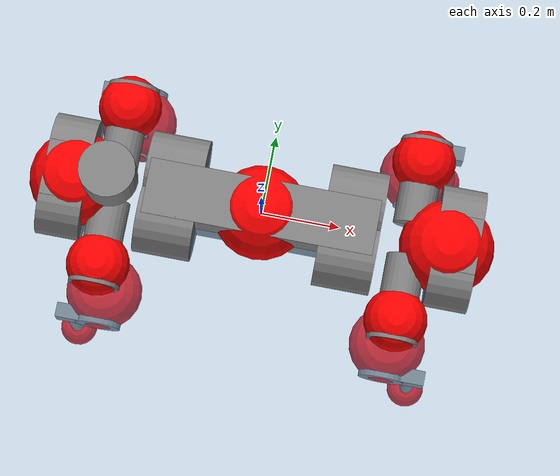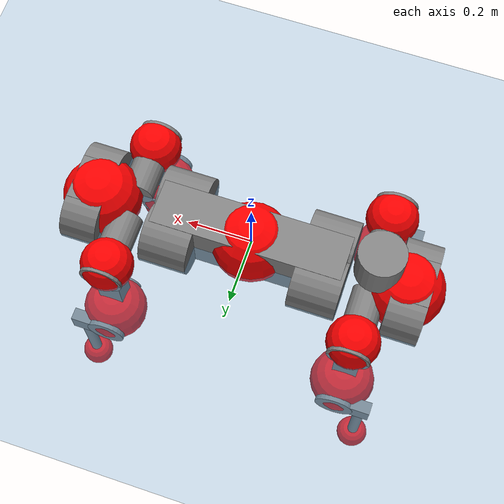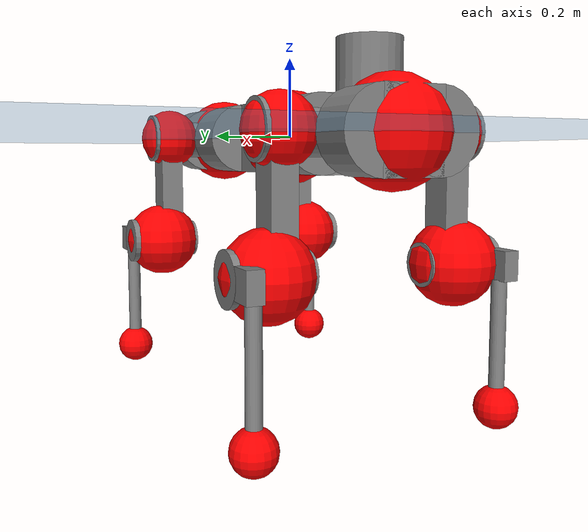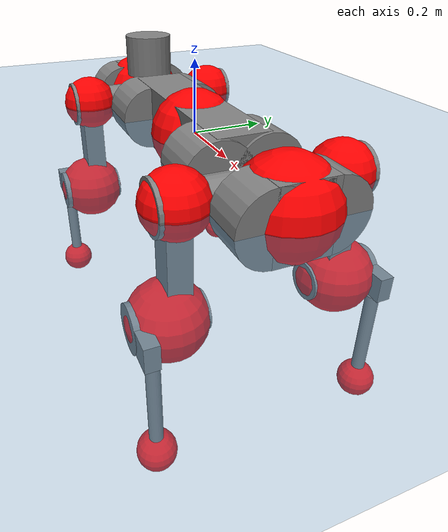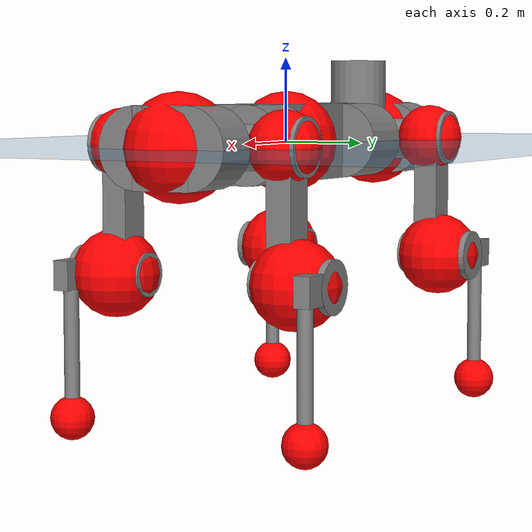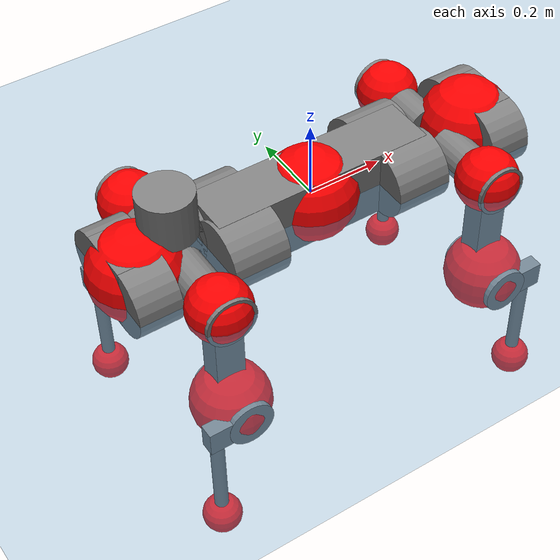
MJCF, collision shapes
<mujoco model="anymal_c">
  <compiler angle="radian" assetdir="assets" balanceinertia="true" inertiafromgeom="false"/>

  <option timestep="0.005" density="1.2" viscosity="2e-05"/>

  <size nkey="1"/>

  <visual>
    <quality shadowsize="8192"/>
    <map shadowclip="0.5"/>
  </visual>

  <default>
    <default class="/">
      <material specular="0" shininess="0.25"/>
      <geom contype="0" conaffinity="0" group="1" solref="-1000 -80"/>
      <site size="0.01 0.005 0.005" group="5"/>
      <general forcelimited="true" forcerange="-80 80" biastype="affine" gainprm="80" biasprm="0 -80 -2"/>
      <default class="anymal_c">
        <joint armature="0.01" damping="0.01" frictionloss="0.1"/>
        <default class="visual">
          <geom type="mesh" group="2"/>
          <default class="visual_zflip"/>
        </default>
        <default class="collision">
          <geom type="cylinder" group="3"/>
          <default class="foot">
            <geom size="0.03 0 0" type="sphere" condim="6" priority="1" friction="0.8 0.02 0.01" solimp="0.015 1 0.03"/>
          </default>
        </default>
      </default>
      <default class="reward_collision_sphere">
        <geom group="5" rgba="1 0 0 1"/>
      </default>
    </default>
  </default>

  <asset>
    <texture type="skybox" colorspace="auto" name="//unnamed_texture_0" builtin="gradient" rgb1="0.95 0.95 0.95" rgb2="0.95 0.95 0.95" width="100" height="600"/>
    <texture type="2d" colorspace="auto" name="texplane" builtin="checker" rgb1="0.345 0.575 0.748" rgb2="0.345 0.575 0.748" markrgb="1 1 1" width="512" height="512"/>
    <texture type="2d" colorspace="linear" name="base" file="base.png"/>
    <texture type="2d" colorspace="linear" name="top_shell" file="top_shell.png"/>
    <texture type="2d" colorspace="linear" name="bottom_shell" file="bottom_shell.png"/>
    <texture type="2d" colorspace="linear" name="remote" file="remote.png"/>
    <texture type="2d" colorspace="linear" name="hatch" file="hatch.png"/>
    <texture type="2d" colorspace="linear" name="handle" file="handle.png"/>
    <texture type="2d" colorspace="linear" name="face" file="face.png"/>
    <texture type="2d" colorspace="linear" name="battery" file="battery.png"/>
    <texture type="2d" colorspace="linear" name="lidar_cage" file="lidar_cage.png"/>
    <texture type="2d" colorspace="linear" name="depth_camera" file="depth_camera.png"/>
    <texture type="2d" colorspace="linear" name="wide_angle_camera" file="wide_angle_camera.png"/>
    <texture type="2d" colorspace="linear" name="lidar" file="lidar.png"/>
    <texture type="2d" colorspace="linear" name="drive" file="drive.png"/>
    <texture type="2d" colorspace="linear" name="hip_l" file="hip_l.png"/>
    <texture type="2d" colorspace="linear" name="shank_l" file="shank_l.png"/>
    <texture type="2d" colorspace="linear" name="foot" file="foot.png"/>
    <texture type="2d" colorspace="linear" name="thigh" file="thigh.png"/>
    <texture type="2d" colorspace="linear" name="shank_r" file="shank_r.png"/>
    <texture type="2d" colorspace="linear" name="hip_r" file="hip_r.png"/>
    <material name="MatPlane" class="/" texture="texplane" texuniform="true" texrepeat="2 2" specular="0.9" shininess="0.5"/>
    <material name="black_plastic" class="/" rgba="0.007 0.007 0.007 1"/>
    <material name="green" class="/" rgba="0.052 0.178 0.033 1"/>
    <material name="red" class="/" rgba="0.178 0.006 0.005 1"/>
    <material name="yellow" class="/" rgba="0.178 0.119 0.006 1"/>
    <material name="lwl" class="/" rgba="0.8 0.8 0.8 1"/>
    <material name="base" class="/" texture="base"/>
    <material name="top_shell" class="/" texture="top_shell"/>
    <material name="bottom_shell" class="/" texture="bottom_shell"/>
    <material name="hip_l" class="/" texture="hip_l"/>
    <material name="thigh" class="/" texture="thigh"/>
    <material name="shank_l" class="/" texture="shank_l"/>
    <material name="foot" class="/" texture="foot"/>
    <material name="hip_r" class="/" texture="hip_r"/>
    <material name="shank" class="/" texture="shank_r"/>
    <material name="hatch" class="/" texture="hatch"/>
    <material name="remote" class="/" texture="remote"/>
    <material name="handle" class="/" texture="handle"/>
    <material name="face" class="/" texture="face"/>
    <material name="depth_camera" class="/" texture="depth_camera"/>
    <material name="wide_angle_camera" class="/" texture="wide_angle_camera"/>
    <material name="battery" class="/" texture="battery"/>
    <material name="lidar_cage" class="/" texture="lidar_cage"/>
    <material name="lidar" class="/" texture="lidar"/>
    <material name="drive" class="/" texture="drive"/>
    <mesh name="base_0" class="/" file="base_0.obj"/>
    <mesh name="base_1" class="/" file="base_1.obj"/>
    <mesh name="base_2" class="/" file="base_2.obj"/>
    <mesh name="base_3" class="/" file="base_3.obj"/>
    <mesh name="base_4" class="/" file="base_4.obj"/>
    <mesh name="base_5" class="/" file="base_5.obj"/>
    <mesh name="top_shell" class="/" file="top_shell.obj"/>
    <mesh name="bottom_shell" class="/" file="bottom_shell.obj"/>
    <mesh name="remote" class="/" file="remote.obj"/>
    <mesh name="handle" class="/" file="handle.obj"/>
    <mesh name="face" class="/" file="face.obj"/>
    <mesh name="wide_angle_camera" class="/" file="wide_angle_camera.obj"/>
    <mesh name="depth_camera" class="/" file="depth_camera.obj"/>
    <mesh name="battery" class="/" file="battery.obj"/>
    <mesh name="lidar_cage" class="/" file="lidar_cage.obj"/>
    <mesh name="lidar" class="/" file="lidar.obj"/>
    <mesh name="drive" class="/" file="drive.obj"/>
    <mesh name="hip_l" class="/" file="hip_l.obj"/>
    <mesh name="thigh" class="/" file="thigh.obj"/>
    <mesh name="shank_l" class="/" file="shank_l.obj"/>
    <mesh name="foot" class="/" file="foot.obj"/>
    <mesh name="hip_r" class="/" file="hip_r.obj"/>
    <mesh name="hatch" class="/" file="hatch.obj"/>
    <mesh name="shank_r" class="/" file="shank_r.obj"/>
  </asset>

  <worldbody>
    <geom name="floor" class="/" size="100 100 0.125" type="plane" group="0" material="MatPlane"/>
    <light name="toplight_shadow" class="/" pos="0 0 5" dir="0.0990148 0.0990148 -0.990148" type="directional" ambient="0.04 0.04 0.04" diffuse="0.55 0.55 0.55" specular="0.12 0.12 0.12"/>
    <light name="toplight_fill" class="/" pos="0 0 5" dir="0.0990148 0.0990148 -0.990148" type="directional" castshadow="false" ambient="0.04 0.04 0.04" diffuse="0.3 0.3 0.3" specular="0.08 0.08 0.08"/>
    <body name="trunk" childclass="anymal_c" pos="-0.000694832 0.000783755 0.000347842" quat="1 -0.000130659 -6.8633e-05 -7.64687e-05">
      <inertial pos="0.00137209 -0.000149161 0.0506388" quat="0.499297 0.50047 0.499277 0.500953" mass="19.9459" diaginertia="0.848508 0.460659 0.258618"/>
      <joint name="//unnamed_joint_0" type="free" armature="0" damping="0" frictionloss="0"/>
      <geom name="//unnamed_geom_1" class="visual" material="green" mesh="base_0"/>
      <geom name="//unnamed_geom_2" class="visual" material="yellow" mesh="base_1"/>
      <geom name="//unnamed_geom_3" class="visual" material="red" mesh="base_2"/>
      <geom name="//unnamed_geom_4" class="visual" material="black_plastic" mesh="base_3"/>
      <geom name="//unnamed_geom_5" class="visual" material="lwl" mesh="base_4"/>
      <geom name="//unnamed_geom_6" class="visual" material="base" mesh="base_5"/>
      <geom name="trunk_1" class="collision" size="0.29328 0.0707918 0.091018" type="box"/>
      <geom name="trunk_2" class="collision" size="0.091018 0.07332" pos="0.230142 0.0658791 0" quat="0.707107 0 0.707107 0"/>
      <geom name="trunk_3" class="collision" size="0.091018 0.07332" pos="-0.230142 0.0658791 0" quat="0.707107 0 0.707107 0"/>
      <geom name="trunk_4" class="collision" size="0.091018 0.07332" pos="0.230142 -0.0658791 0" quat="0.707107 0 0.707107 0"/>
      <geom name="trunk_5" class="collision" size="0.091018 0.07332" pos="-0.230142 -0.0658791 0" quat="0.707107 0 0.707107 0"/>
      <geom name="//unnamed_geom_12" class="visual" material="top_shell" mesh="top_shell"/>
      <geom name="//unnamed_geom_13" class="visual" material="bottom_shell" mesh="bottom_shell"/>
      <geom name="//unnamed_geom_14" class="visual" material="remote" mesh="remote"/>
      <geom name="//unnamed_geom_15" class="visual" material="handle" mesh="handle"/>
      <geom name="//unnamed_geom_16" class="visual" pos="0.438593 0 0" quat="1 0 0 0" material="face" mesh="face"/>
      <geom name="trunk_6" class="collision" size="0.0556221 0.0707918 0.091018" pos="0.49679 0 0" type="box"/>
      <geom name="//unnamed_geom_18" class="collision" size="0.091018 0.0556221" pos="0.49679 0.0658791 0" quat="0.707107 0 0.707107 0"/>
      <geom name="//unnamed_geom_19" class="collision" size="0.091018 0.0556221" pos="0.49679 -0.0658791 0" quat="0.707107 0 0.707107 0"/>
      <geom name="//unnamed_geom_20" class="visual" pos="0.488483 0 -0.0300343" quat="0.965926 0 0.258819 0" material="depth_camera" mesh="depth_camera"/>
      <geom name="//unnamed_geom_21" class="visual" pos="0.542819 0 0.0154891" material="wide_angle_camera" mesh="wide_angle_camera"/>
      <geom name="//unnamed_geom_22" class="visual_zflip" pos="-0.438593 0 0" quat="0 0 0 1" material="face" mesh="face"/>
      <geom name="trunk_7" class="collision" size="0.0556221 0.0707918 0.091018" pos="-0.49679 0 0" quat="0 0 0 1" type="box"/>
      <geom name="//unnamed_geom_24" class="collision" size="0.091018 0.0556221" pos="-0.49679 -0.0658791 0" quat="0 -0.707107 0 0.707107"/>
      <geom name="//unnamed_geom_25" class="collision" size="0.091018 0.0556221" pos="-0.49679 0.0658791 0" quat="0 -0.707107 0 0.707107"/>
      <geom name="//unnamed_geom_26" class="visual" pos="-0.488483 0 -0.0300343" quat="0 -0.258819 0 0.965926" material="depth_camera" mesh="depth_camera"/>
      <geom name="//unnamed_geom_27" class="visual_zflip" pos="-0.542819 0 0.0154891" quat="0 0 0 1" material="wide_angle_camera" mesh="wide_angle_camera"/>
      <geom name="//unnamed_geom_28" class="visual" material="battery" mesh="battery"/>
      <geom name="//unnamed_geom_29" class="visual" pos="0 0.0704226 0.0302356" quat="0.683013 -0.183013 0.183013 0.683013" material="depth_camera" mesh="depth_camera"/>
      <geom name="//unnamed_geom_30" class="visual" pos="0 -0.0704226 0.0302356" quat="0.683013 0.183013 0.183013 -0.683013" material="depth_camera" mesh="depth_camera"/>
      <geom name="//unnamed_geom_31" class="visual" pos="-0.385158 0 0.0760487" quat="1 0 0 0" material="lidar_cage" mesh="lidar_cage"/>
      <geom name="trunk_8" class="collision" size="0.0707918 0.0606787" pos="-0.385158 0 0.138129"/>
      <geom name="//unnamed_geom_33" class="visual" pos="-0.385158 -4.59644e-05 0.147131" quat="0.707107 0 0 -0.707107" material="lidar" mesh="lidar"/>
      <geom name="//unnamed_geom_34" class="visual" pos="0.317332 0.0979108 -1.61368e-09" quat="0.258819 0.965926 0 0" material="drive" mesh="drive"/>
      <geom name="//unnamed_geom_35" class="visual" pos="0.317332 -0.0979108 1.61368e-09" quat="0.258819 -0.965926 0 0" material="drive" mesh="drive"/>
      <geom name="//unnamed_geom_36" class="visual" pos="-0.317332 0.0979108 1.61368e-09" quat="0 0 0.965926 -0.258819" material="drive" mesh="drive"/>
      <geom name="//unnamed_geom_37" class="visual" pos="-0.317332 -0.0979108 -1.61368e-09" quat="0 0 -0.965926 -0.258819" material="drive" mesh="drive"/>
      <geom name="//unnamed_geom_38" class="visual" pos="0.122743 0 0.0755314" quat="1 0 0 0" material="hatch" mesh="hatch"/>
      <geom name="//unnamed_geom_39" class="reward_collision_sphere" size="0.121357"/>
      <geom name="//unnamed_geom_40" class="reward_collision_sphere" size="0.121357" pos="0.476157 0 0"/>
      <geom name="//unnamed_geom_41" class="reward_collision_sphere" size="0.121357" pos="-0.476157 0 0"/>
      <site name="imu" pos="0.263033 0.00691251 0.0462548" size="0.0101131"/>
      <camera name="track" pos="0 -1.88226 0" quat="0.707107 0.707107 0 0" mode="trackcom"/>
      <camera name="ego_camera" pos="0.476157 0 -0.0413871" quat="-0.5 -0.5 0.5 0.5"/>
      <body name="LF_HIP" pos="0.318324 0.0991524 -0.00119768" quat="0.258797 0.965932 7.37534e-05 -0.00040763">
        <inertial pos="0.059021 -0.0133056 -0.0076057" quat="-0.127986 0.710723 -0.135827 0.678265" mass="2.87017" diaginertia="0.00773452 0.00361267 0.00385999"/>
        <joint name="LF_HAA" pos="0 0 0" axis="0.99999 -0.00409151 -0.00197576" range="-0.713363 0.488731" armature="0.0098522" damping="0.0151155" frictionloss="0.0985934"/>
        <geom name="//unnamed_geom_42" class="visual" pos="0 -9.49256e-05 1.55915e-05" quat="0.258819 -0.965926 0 0" material="hip_l" mesh="hip_l"/>
        <geom name="//unnamed_geom_43" class="visual" pos="0.0633817 -0.0752933 -0.0441625" quat="0.183013 -0.683013 0.683013 0.183013" material="drive" mesh="drive"/>
        <geom name="//unnamed_geom_44" class="collision" size="0.0505655 0.0707918" pos="0.0633817 -0.0112557 -0.00714444" quat="-0.353553 -0.612372 0.612372 -0.353553"/>
        <body name="LF_THIGH" pos="0.0633906 -0.068217 -0.0433862" quat="0.183168 -0.683067 0.682928 0.182973">
          <inertial pos="0.0335652 -9.92505e-05 -0.25396" quat="0.993232 -0.00536426 -0.0792757 0.0847138" mass="3.16011" diaginertia="0.0402163 0.0221733 0.00498244"/>
          <joint name="LF_HFE" pos="0 0 0" axis="0.999993 -0.00314841 0.00196549" stiffness="0.00608435" range="-3.13931 3.12667" armature="0.0097942" damping="0.00336247" frictionloss="0.0971631"/>
          <geom name="//unnamed_geom_45" class="visual" pos="0.00232775 3.66799e-06 0" quat="0.707107 0 0 -0.707107" material="thigh" mesh="thigh"/>
          <geom name="//unnamed_geom_46" class="collision" size="0.0657352 0.0404524" pos="0.042325 0 0" quat="0.5 0.5 -0.5 -0.5"/>
          <geom name="//unnamed_geom_47" class="collision" size="0.0379242 0.0303393 0.142912" pos="0.0317438 0 -0.146214" quat="0.707107 0 0 -0.707107" type="box"/>
          <geom name="//unnamed_geom_48" class="visual" pos="0.10613 0 -0.294883" quat="1 0 0 0" material="drive" mesh="drive"/>
          <geom name="//unnamed_geom_49" class="collision" size="0.0505655 0.0707918" pos="0.0320612 0 -0.294883" quat="0.707107 0 0.707107 0"/>
          <geom name="//unnamed_geom_50" class="reward_collision_sphere" size="0.0809049" pos="0.0264531 0 0"/>
          <body name="LF_SHANK" pos="0.106649 -0.000114159 -0.295243" quat="1 -0.000192484 8.0002e-05 0.000455004">
            <inertial pos="0.00483905 -0.0584861 -0.0828748" quat="0.992903 -0.116164 -0.000665065 -0.0254948" mass="0.610693" diaginertia="0.0134747 0.00675014 0.00134162"/>
            <joint name="LF_KFE" pos="0 0 0" axis="1 -8.68252e-05 -2.53686e-05" range="-3.13595 3.14223" armature="0.0106255" damping="0.00919743" frictionloss="0.0998812"/>
            <geom name="//unnamed_geom_51" class="visual" pos="0.000759028 0.00404718 0" quat="0.707107 0 0 -0.707107" material="shank_l" mesh="shank_l"/>
            <geom name="LF_kfe_act" class="collision" size="0.0606787 0.0202262" pos="0.0211625 0 0" quat="0.5 0.5 -0.5 -0.5"/>
            <geom name="//unnamed_geom_53" class="collision" size="0.0581494 0.0341317 0.0192149" pos="0.0211625 -0.0541141 0" quat="0.5 0.5 -0.5 -0.5" type="box"/>
            <geom name="//unnamed_geom_54" class="visual" pos="0.0138084 -0.0814682 -0.34969" quat="0.382683 0 0 -0.92388" material="foot" mesh="foot"/>
            <geom name="LF_calf" class="collision" size="0.0176979 0.14285" pos="0.0138085 -0.0827724 -0.174845" quat="0.707107 0 0 -0.707107"/>
            <geom name="LF_foot" class="foot" size="0.0287812" pos="0.0138085 -0.0827724 -0.326409" quat="0.707107 0 0 -0.707107"/>
            <geom name="//unnamed_geom_57" class="reward_collision_sphere" size="0.101131" pos="-0.0529063 0 0"/>
            <geom name="//unnamed_geom_58" class="reward_collision_sphere" size="0.0505655" pos="0.0138085 -0.0827724 -0.326409"/>
            <site name="LF_foot" class="foot" pos="0.0138085 -0.0827724 -0.326409" quat="0.707107 0 0 -0.707107" size="0.0101131"/>
          </body>
        </body>
      </body>
      <body name="RF_HIP" pos="0.317911 -0.0982505 -0.000237934" quat="0.258929 -0.965896 -5.88234e-05 -0.000148434">
        <inertial pos="0.0597214 0.0148619 -0.00856557" quat="0.134678 0.679097 0.129221 0.709923" mass="2.89768" diaginertia="0.0076598 0.00357349 0.00390675"/>
        <joint name="RF_HAA" pos="0 0 0" axis="1 0.000871039 0.00042433" stiffness="0.00102655" range="-0.511345 0.724083" armature="0.00968456" damping="0.00984479" frictionloss="0.10503"/>
        <geom name="//unnamed_geom_59" class="visual" pos="0 9.49249e-05 1.55914e-05" quat="0.258819 0.965926 0 0" material="hip_r" mesh="hip_r"/>
        <geom name="//unnamed_geom_60" class="visual" pos="0.0633817 0.0752933 -0.0441625" quat="0.183013 0.683013 0.683013 -0.183013" material="drive" mesh="drive"/>
        <geom name="//unnamed_geom_61" class="collision" size="0.0505655 0.0707918" pos="0.0633817 0.0112557 -0.00714444" quat="-0.353553 0.612372 0.612372 0.353553"/>
        <body name="RF_THIGH" pos="0.0640544 0.0680502 -0.0439696" quat="0.182912 0.683054 0.68301 -0.182971">
          <inertial pos="0.0334221 -0.000991676 -0.25433" quat="0.992895 -0.00442499 -0.0799678 0.0880056" mass="3.13993" diaginertia="0.040292 0.0222803 0.00499641"/>
          <joint name="RF_HFE" pos="0 0 0" axis="0.999997 0.000814474 -0.002139" stiffness="0.00633777" range="-3.14511 3.14178" armature="0.0101285" damping="0.0092658" frictionloss="0.0984761"/>
          <geom name="//unnamed_geom_62" class="visual" pos="0.00232775 3.66799e-06 0" quat="0.707107 0 0 -0.707107" material="thigh" mesh="thigh"/>
          <geom name="//unnamed_geom_63" class="collision" size="0.0657352 0.0404524" pos="0.042325 0 0" quat="0.5 0.5 0.5 0.5"/>
          <geom name="//unnamed_geom_64" class="collision" size="0.0379242 0.0303393 0.142912" pos="0.0317438 0 -0.146214" quat="0.707107 0 0 0.707107" type="box"/>
          <geom name="//unnamed_geom_65" class="visual" pos="0.10613 0 -0.294883" quat="1 0 0 0" material="drive" mesh="drive"/>
          <geom name="//unnamed_geom_66" class="collision" size="0.0505655 0.0707918" pos="0.0320612 0 -0.294883" quat="0.707107 0 0.707107 0"/>
          <geom name="//unnamed_geom_67" class="reward_collision_sphere" size="0.0809049" pos="0.0264531 0 0"/>
          <body name="RF_SHANK" pos="0.104952 0.000238873 -0.295256" quat="1 3.53329e-05 -4.91765e-06 -1.98977e-05">
            <inertial pos="0.00505453 0.0575915 -0.0836342" quat="0.993057 0.114854 -0.00177728 0.0253805" mass="0.609338" diaginertia="0.0134229 0.00685956 0.00131862"/>
            <joint name="RF_KFE" pos="0 0 0" axis="0.999995 -0.00307955 -0.00048371" range="-3.13434 3.13642" armature="0.00996268" damping="0.00467528" frictionloss="0.103243"/>
            <geom name="//unnamed_geom_68" class="visual" pos="0.000759024 -0.00404717 0" quat="0.707107 0 0 0.707107" material="shank" mesh="shank_r"/>
            <geom name="RF_kfe_act" class="collision" size="0.0606787 0.0202262" pos="0.0211625 0 0" quat="0.5 0.5 0.5 0.5"/>
            <geom name="//unnamed_geom_70" class="collision" size="0.0581494 0.0341317 0.0192149" pos="0.0211625 0.0541141 0" quat="0.5 0.5 0.5 0.5" type="box"/>
            <geom name="//unnamed_geom_71" class="visual" pos="0.0138087 0.0814682 -0.34969" quat="0.382683 0 0 0.92388" material="foot" mesh="foot"/>
            <geom name="RF_calf" class="collision" size="0.0176979 0.14285" pos="0.0138085 0.0827724 -0.174845" quat="0.707107 0 0 0.707107"/>
            <geom name="RF_foot" class="foot" size="0.0298414" pos="0.0138085 0.0827724 -0.326409" quat="0.707107 0 0 0.707107"/>
            <geom name="//unnamed_geom_74" class="reward_collision_sphere" size="0.101131" pos="-0.0529063 0 0"/>
            <geom name="//unnamed_geom_75" class="reward_collision_sphere" size="0.0505655" pos="0.0138085 0.0827724 -0.326409"/>
            <site name="RF_foot" class="foot" pos="0.0138085 0.0827724 -0.326409" quat="0.707107 0 0 0.707107" size="0.0101131"/>
          </body>
        </body>
      </body>
      <body name="LH_HIP" pos="-0.317111 0.0984362 -0.000374554" quat="0.000230288 -0.000605211 0.966028 -0.258435">
        <inertial pos="0.0608485 0.0137147 -0.00876083" quat="0.13524 0.678975 0.128241 0.71011" mass="2.8831" diaginertia="0.00774069 0.00358888 0.00386851"/>
        <joint name="LH_HAA" pos="0 0 0" axis="1 -0.000936446 -0.000254114" range="-0.503784 0.728375" armature="0.0100807" damping="0.00959468" frictionloss="0.0996297"/>
        <geom name="//unnamed_geom_76" class="visual" pos="0 9.49249e-05 1.55914e-05" quat="-0.258819 -0.965926 0 0" material="hip_r" mesh="hip_r"/>
        <geom name="//unnamed_geom_77" class="visual" pos="0.0633817 0.0752933 -0.0441625" quat="0.183013 0.683013 0.683013 -0.183013" material="drive" mesh="drive"/>
        <geom name="//unnamed_geom_78" class="collision" size="0.0505655 0.0707918" pos="0.0633817 0.0112557 -0.00714444" quat="-0.353553 0.612372 0.612372 0.353553"/>
        <body name="LH_THIGH" pos="0.062077 0.0674188 -0.0444204" quat="0.183011 0.683011 0.683017 -0.183006">
          <inertial pos="0.0325116 -0.000522273 -0.25446" quat="0.9928 -0.0051715 -0.0804201 0.0886189" mass="3.183" diaginertia="0.0402625 0.022202 0.00496203"/>
          <joint name="LH_HFE" pos="0 0 0" axis="0.999996 0.00256257 0.00147333" range="-3.14907 3.13531" armature="0.0105011" damping="0.0039722" frictionloss="0.101739"/>
          <geom name="//unnamed_geom_79" class="visual" pos="0.00232775 3.66799e-06 0" quat="0.707107 0 0 -0.707107" material="thigh" mesh="thigh"/>
          <geom name="//unnamed_geom_80" class="collision" size="0.0657352 0.0404524" pos="0.042325 0 0" quat="0.5 0.5 -0.5 -0.5"/>
          <geom name="//unnamed_geom_81" class="collision" size="0.0379242 0.0303393 0.142912" pos="0.0317438 0 -0.146214" quat="0.707107 0 0 -0.707107" type="box"/>
          <geom name="//unnamed_geom_82" class="visual" pos="0.10613 0 -0.294883" quat="1 0 0 0" material="drive" mesh="drive"/>
          <geom name="//unnamed_geom_83" class="collision" size="0.0505655 0.0707918" pos="0.0320612 0 -0.294883" quat="0.707107 0 0.707107 0"/>
          <geom name="//unnamed_geom_84" class="reward_collision_sphere" size="0.0809049" pos="0.0264531 0 0"/>
          <body name="LH_SHANK" pos="0.105751 -0.000257622 -0.295521" quat="1 4.66127e-05 9.8126e-06 -2.53446e-05">
            <inertial pos="0.00585118 0.0575117 -0.0843628" quat="0.992921 0.116013 -0.00110389 0.0254323" mass="0.608171" diaginertia="0.0135121 0.00681493 0.00133412"/>
            <joint name="LH_KFE" pos="0 0 0" axis="0.999998 -0.00207103 0.000151154" range="-3.1505 3.14092" armature="0.0102494" damping="0.00447592" frictionloss="0.101166"/>
            <geom name="//unnamed_geom_85" class="visual" pos="0.000759024 -0.00404717 0" quat="-0.707107 0 0 -0.707107" material="shank" mesh="shank_r"/>
            <geom name="LH_kfe_act" class="collision" size="0.0606787 0.0202262" pos="0.0211625 0 0" quat="0.5 0.5 -0.5 -0.5"/>
            <geom name="//unnamed_geom_87" class="collision" size="0.0581494 0.0341317 0.0192149" pos="0.0211625 0.0541141 0" quat="0.5 0.5 -0.5 -0.5" type="box"/>
            <geom name="//unnamed_geom_88" class="visual" pos="0.0138087 0.0814682 -0.34969" quat="-0.382683 0 0 -0.92388" material="foot" mesh="foot"/>
            <geom name="LH_calf" class="collision" size="0.0176979 0.14285" pos="0.0138085 0.0827724 -0.174845" quat="0.707107 0 0 -0.707107"/>
            <geom name="LH_foot" class="foot" size="0.0304852" pos="0.0138085 0.0827724 -0.326409" quat="0.707107 0 0 -0.707107"/>
            <geom name="//unnamed_geom_91" class="reward_collision_sphere" size="0.101131" pos="-0.0529063 0 0"/>
            <geom name="//unnamed_geom_92" class="reward_collision_sphere" size="0.0505655" pos="0.0138085 0.0827724 -0.326409"/>
            <site name="LH_foot" class="foot" pos="0.0138085 0.0827724 -0.326409" quat="0.707107 0 0 -0.707107" size="0.0101131"/>
          </body>
        </body>
      </body>
      <body name="RH_HIP" pos="-0.316765 -0.0988561 1.33453e-05" quat="0.000149801 0.000201074 -0.965992 -0.258571">
        <inertial pos="0.0599962 -0.0149417 -0.00878652" quat="-0.128753 0.709494 -0.134178 0.679733" mass="2.8698" diaginertia="0.00766666 0.00358428 0.00391528"/>
        <joint name="RH_HAA" pos="0 0 0" axis="1 0.000556949 -0.000148978" range="-0.715929 0.496497" armature="0.0104264" damping="0.016971" frictionloss="0.101115"/>
        <geom name="//unnamed_geom_93" class="visual" pos="0 -9.49256e-05 1.55915e-05" quat="-0.258819 0.965926 0 0" material="hip_l" mesh="hip_l"/>
        <geom name="//unnamed_geom_94" class="visual" pos="0.0633817 -0.0752933 -0.0441625" quat="-0.183013 0.683013 -0.683013 -0.183013" material="drive" mesh="drive"/>
        <geom name="//unnamed_geom_95" class="collision" size="0.0505655 0.0707918" pos="0.0633817 -0.0112557 -0.00714444" quat="0.353553 0.612372 -0.612372 0.353553"/>
        <body name="RH_THIGH" pos="0.063102 -0.0686271 -0.043598" quat="-0.18313 0.683071 -0.682924 -0.183008">
          <inertial pos="0.0327052 0.000849481 -0.25437" quat="0.99315 -0.0049938 -0.0806319 0.0844169" mass="3.21583" diaginertia="0.0404889 0.0221262 0.00495993"/>
          <joint name="RH_HFE" pos="0 0 0" axis="1 -0.0003421 -6.6281e-05" range="-3.14634 3.12516" armature="0.00964587" damping="0.0053987" frictionloss="0.099322"/>
          <geom name="//unnamed_geom_96" class="visual" pos="0.00232775 3.66799e-06 0" quat="0.707107 0 0 -0.707107" material="thigh" mesh="thigh"/>
          <geom name="//unnamed_geom_97" class="collision" size="0.0657352 0.0404524" pos="0.042325 0 0" quat="0.5 0.5 0.5 0.5"/>
          <geom name="//unnamed_geom_98" class="collision" size="0.0379242 0.0303393 0.142912" pos="0.0317438 0 -0.146214" quat="0.707107 0 0 0.707107" type="box"/>
          <geom name="//unnamed_geom_99" class="visual" pos="0.10613 0 -0.294883" quat="1 0 0 0" material="drive" mesh="drive"/>
          <geom name="//unnamed_geom_100" class="collision" size="0.0505655 0.0707918" pos="0.0320612 0 -0.294883" quat="0.707107 0 0.707107 0"/>
          <geom name="//unnamed_geom_101" class="reward_collision_sphere" size="0.0809049" pos="0.0264531 0 0"/>
          <body name="RH_SHANK" pos="0.104475 -0.000410822 -0.294582" quat="1 -2.52596e-06 -5.46964e-05 0.000170268">
            <inertial pos="0.00705772 -0.0574722 -0.084398" quat="0.992875 -0.116464 0.000561437 -0.0251825" mass="0.610012" diaginertia="0.0131896 0.00680881 0.00129919"/>
            <joint name="RH_KFE" pos="0 0 0" axis="0.999983 -0.000298291 -0.00590819" range="-3.13706 3.15958" armature="0.0103839" damping="0.011232" frictionloss="0.10268"/>
            <geom name="//unnamed_geom_102" class="visual" pos="0.000759028 0.00404718 0" quat="0.707107 0 0 -0.707107" material="shank_l" mesh="shank_l"/>
            <geom name="RH_kfe_act" class="collision" size="0.0606787 0.0202262" pos="0.0211625 0 0" quat="0.5 0.5 0.5 0.5"/>
            <geom name="//unnamed_geom_104" class="collision" size="0.0581494 0.0341317 0.0192149" pos="0.0211625 -0.0541141 0" quat="0.5 0.5 0.5 0.5" type="box"/>
            <geom name="//unnamed_geom_105" class="visual" pos="0.0138084 -0.0814682 -0.34969" quat="0.382683 0 0 -0.92388" material="foot" mesh="foot"/>
            <geom name="RH_calf" class="collision" size="0.0176979 0.14285" pos="0.0138085 -0.0827724 -0.174845" quat="0.707107 0 0 0.707107"/>
            <geom name="RH_foot" class="foot" size="0.0279194" pos="0.0138085 -0.0827724 -0.326409" quat="0.707107 0 0 0.707107"/>
            <geom name="//unnamed_geom_108" class="reward_collision_sphere" size="0.101131" pos="-0.0529063 0 0"/>
            <geom name="//unnamed_geom_109" class="reward_collision_sphere" size="0.0505655" pos="0.0138085 -0.0827724 -0.326409"/>
            <site name="RH_foot" class="foot" pos="0.0138085 -0.0827724 -0.326409" quat="0.707107 0 0 0.707107" size="0.0101131"/>
          </body>
        </body>
      </body>
    </body>
  </worldbody>

  <contact>
    <pair class="/" geom1="floor" geom2="LF_foot" name="//unnamed_contact_0"/>
    <pair class="/" geom1="floor" geom2="RF_foot" name="//unnamed_contact_1"/>
    <pair class="/" geom1="floor" geom2="LH_foot" name="//unnamed_contact_2"/>
    <pair class="/" geom1="floor" geom2="RH_foot" name="//unnamed_contact_3"/>
  </contact>

  <actuator>
    <general name="LF_HAA" class="/" joint="LF_HAA" forcerange="-81.2672 81.2672" gainprm="81.8495" biasprm="0 -81.8495 -1.94927"/>
    <general name="LF_HFE" class="/" joint="LF_HFE" forcerange="-83.2399 83.2399" gainprm="81.8495" biasprm="0 -81.8495 -1.94927"/>
    <general name="LF_KFE" class="/" joint="LF_KFE" forcerange="-81.1977 81.1977" gainprm="81.8495" biasprm="0 -81.8495 -1.94927"/>
    <general name="RF_HAA" class="/" joint="RF_HAA" forcerange="-85.2241 85.2241" gainprm="81.8495" biasprm="0 -81.8495 -1.94927"/>
    <general name="RF_HFE" class="/" joint="RF_HFE" forcerange="-81.7708 81.7708" gainprm="81.8495" biasprm="0 -81.8495 -1.94927"/>
    <general name="RF_KFE" class="/" joint="RF_KFE" forcerange="-83.1004 83.1004" gainprm="81.8495" biasprm="0 -81.8495 -1.94927"/>
    <general name="LH_HAA" class="/" joint="LH_HAA" forcerange="-82.0649 82.0649" gainprm="81.8495" biasprm="0 -81.8495 -1.94927"/>
    <general name="LH_HFE" class="/" joint="LH_HFE" forcerange="-81.883 81.883" gainprm="81.8495" biasprm="0 -81.8495 -1.94927"/>
    <general name="LH_KFE" class="/" joint="LH_KFE" forcerange="-80.9694 80.9694" gainprm="81.8495" biasprm="0 -81.8495 -1.94927"/>
    <general name="RH_HAA" class="/" joint="RH_HAA" forcerange="-82.5356 82.5356" gainprm="81.8495" biasprm="0 -81.8495 -1.94927"/>
    <general name="RH_HFE" class="/" joint="RH_HFE" forcerange="-80.4961 80.4961" gainprm="81.8495" biasprm="0 -81.8495 -1.94927"/>
    <general name="RH_KFE" class="/" joint="RH_KFE" forcerange="-82.1613 82.1613" gainprm="81.8495" biasprm="0 -81.8495 -1.94927"/>
  </actuator>

  <sensor>
    <gyro site="imu" name="imu_angular_velocity"/>
    <velocimeter site="imu" name="imu_linear_velocity"/>
    <framelinvel objtype="site" objname="LF_foot" name="LF_foot_global_linear_velocity"/>
    <framelinvel objtype="site" objname="RF_foot" name="RF_foot_global_linear_velocity"/>
    <framelinvel objtype="site" objname="LH_foot" name="LH_foot_global_linear_velocity"/>
    <framelinvel objtype="site" objname="RH_foot" name="RH_foot_global_linear_velocity"/>
  </sensor>

  <keyframe>
    <key name="home" qpos="0 0 0.55 1 0 0 0 0 0.4 -0.8 0 -0.4 0.8 0 -0.4 0.8 0 0.4 -0.8"/>
  </keyframe>
</mujoco>
